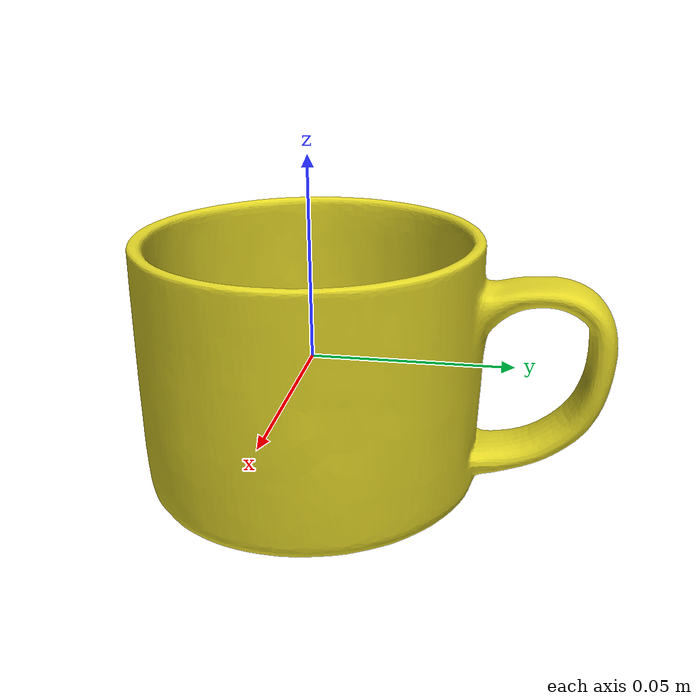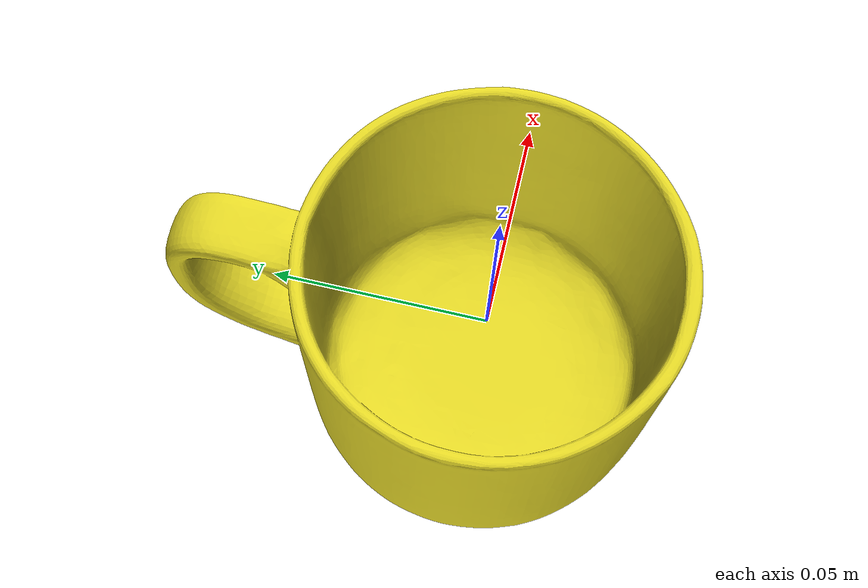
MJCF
<mujoco model="yellow_cup">
  <asset>
    <mesh file="meshes/yellow_cup/yellow_cup.obj" name="yellow_cup_mesh" scale="0.001 0.001 0.001"/>
    <texture file="meshes/yellow_cup/Image_0.png" name="tex-yellow-cup" type="2d"/>
    <material name="yellow_cup_mat" reflectance="0.5" texrepeat="1 1" texture="tex-yellow-cup"/>
  </asset>
  <worldbody>
    <body>
      <body name="object">
        <geom pos="0 0 0" mesh="yellow_cup_mesh" type="mesh" solimp="0.998 0.998 0.001" solref="0.001 1" density="1000" friction="0.95 0.3 0.1" group="0" condim="4" material="yellow_cup_mat"/>
      </body>
      <!-- 标记物体的底部接触点、中心点以及水平边缘点，用于碰撞检测等 -->
      <site rgba="0 0 0 0" size="0.005" pos="0 0 -0.03" name="bottom_site"/>
      <site rgba="0 0 0 0" size="0.005" pos="0 0 0.03" name="top_site"/>
      <site rgba="0 0 0 0" size="0.005" pos="0.076 0 0" name="horizontal_radius_site"/>
    </body>
  </worldbody>
</mujoco>
